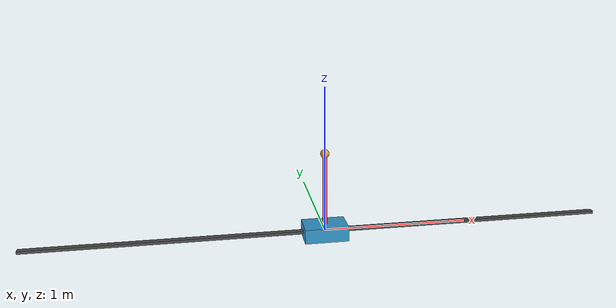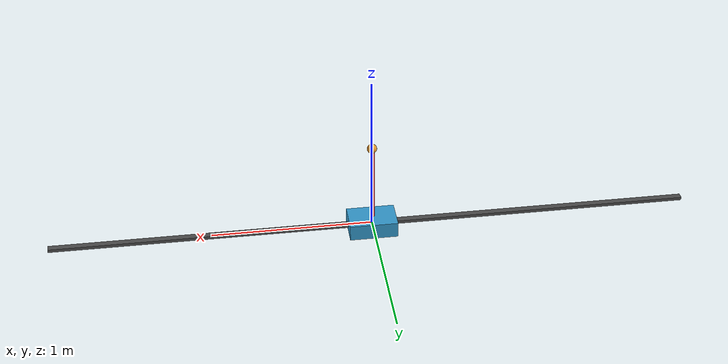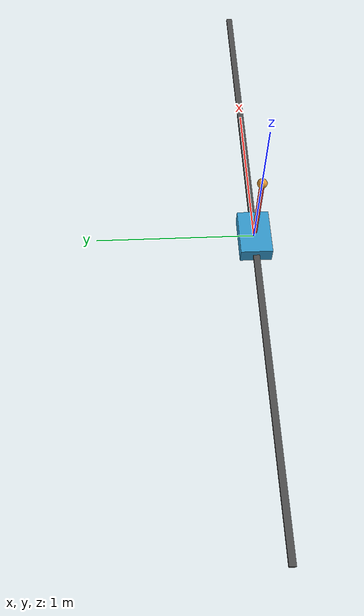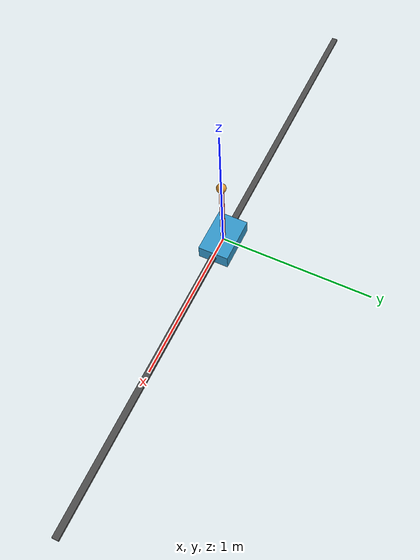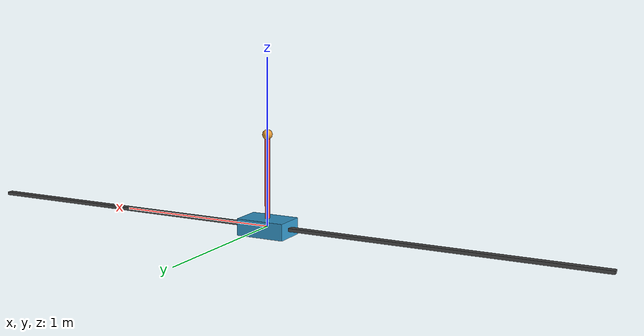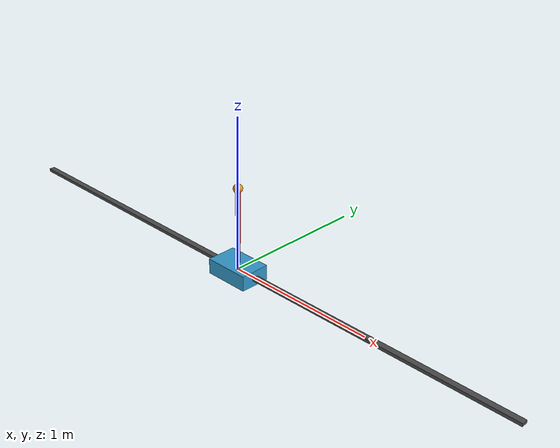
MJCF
<?xml version="1.0" ?>
<mujoco model="inverted_pendulum_primitive">
  <compiler angle="radian" coordinate="local"/>

  <option timestep="0.002" integrator="RK4" gravity="0 0 -9.81"/>

  <visual>
    <headlight ambient="0.4 0.4 0.4" diffuse="0.8 0.8 0.8"/>
  </visual>

  <default>
    <joint damping="0.001" frictionloss="0.001"/>
    <geom contype="1" conaffinity="1" friction="0.7 0.1 0.1"/>
  </default>

  <worldbody>
    <!-- Ground Track -->
    <geom name="rail" type="box" size="2.0 0.02 0.01" pos="0 0 0" rgba="0.3 0.3 0.3 1" contype="0" conaffinity="0"/>

    <!-- Cart Body -->
    <body name="cart" pos="0 0 0">
      <joint name="cart_slider" type="slide" axis="1 0 0" limited="true" range="-1.8 1.8"/>
      <geom name="cart_geom" type="box" size="0.15 0.1 0.05" mass="1.0" rgba="0.2 0.6 0.8 1"/>

      <!-- Inverted Pendulum Link -->
      <!-- Placed vertically upward (+Z) so it starts upright -->
      <body name="pole" pos="0 0 0.05">
        <joint name="pole_hinge" type="hinge" axis="0 1 0" limited="false"/>
        <!-- Cylinder capsule extending +0.5m upward; center of geom is at z=0.25 -->
        <geom name="pole_geom" type="cylinder" size="0.015 0.25" pos="0 0 0.25" mass="0.1" rgba="0.9 0.2 0.2 1"/>

        <!-- Tip weight to adjust inertia/difficulty -->
        <geom name="pole_tip" type="sphere" size="0.03" pos="0 0 0.5" mass="0.05" rgba="0.9 0.6 0.2 1"/>
      </body>
    </body>
  </worldbody>

<actuator>
  <!-- ctrl values will now represent target velocity in m/s -->
  <velocity name="cart_velocity" joint="cart_slider" kv="100" ctrlrange="-2000 2000"/>
</actuator>
</mujoco>
